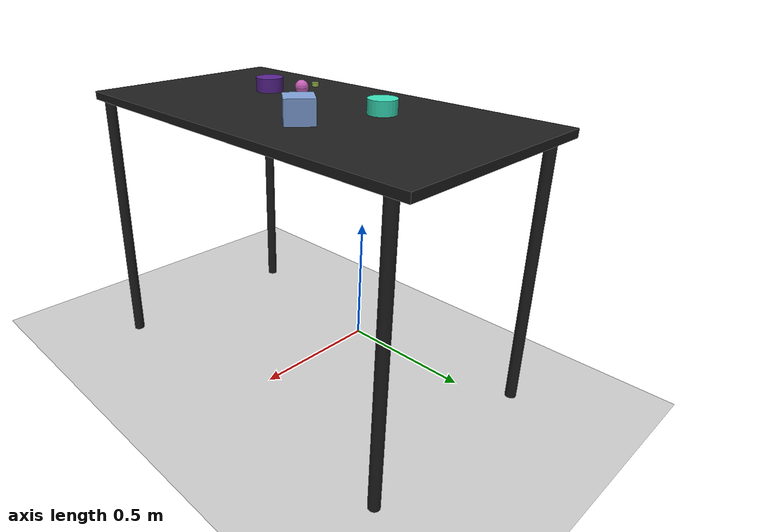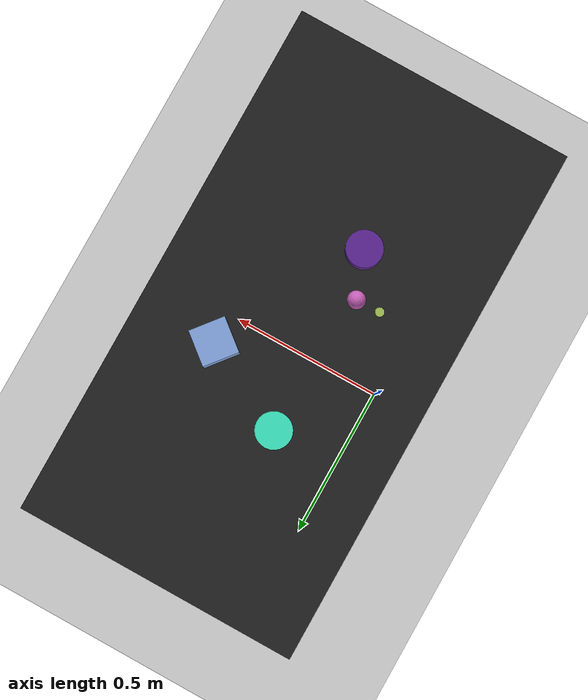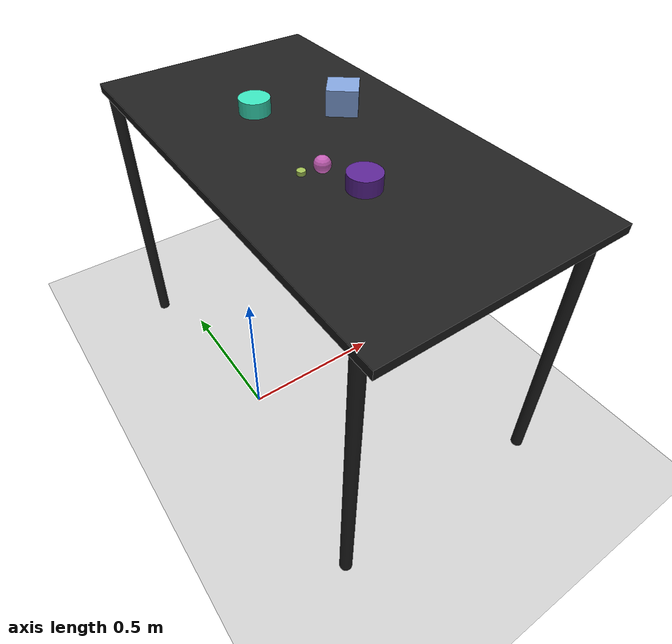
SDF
<?xml version="1.0" ?>
<sdf version="1.6">
  <world name="arm_world">
    <plugin filename="gz-sim-physics-system" name="gz::sim::systems::Physics">
      <engine>
        <filename>libgz-physics-bullet-featherstone-plugin.so</filename>
      </engine>
    </plugin>
    <plugin filename="gz-sim-user-commands-system" name="gz::sim::systems::UserCommands"/>
    <plugin filename="gz-sim-scene-broadcaster-system" name="gz::sim::systems::SceneBroadcaster"/>
    <plugin filename="gz-sim-sensors-system" name="gz::sim::systems::Sensors">
      <render_engine>ogre2</render_engine>
    </plugin>
    <gravity>0.0 0.0 -9.8</gravity>
    <scene>
      <shadows>false</shadows>
    </scene>
    <gui>
      <camera name="user_camera">
        <pose>0.75 -0.75 1.4 0 0.29 2.21</pose>
      </camera>
    </gui>
    <include>
      <uri>https://fuel.gazebosim.org/1.0/OpenRobotics/models/Sun</uri>
    </include>
    <model name="table">
      <static>true</static>
      <include>
        <uri>model://table</uri>
      </include>
      <pose>0.29 0 0 0 0 1.5708</pose>
    </model>
    <model name="ground_plane">
      <static>true</static>
      <link name="link">
        <collision name="collision">
          <geometry>
            <plane>
              <normal>0 0 1</normal>
            </plane>
          </geometry>
          <surface>
            <friction>
              <ode>
                <mu>1.0</mu>
                <mu2>1.0</mu2>
              </ode>
            </friction>
          </surface>
        </collision>
        <visual name="visual">
          <geometry>
            <plane>
              <normal>0 0 1</normal>
              <size>100 100</size>
            </plane>
          </geometry>
          <material>
            <ambient>0.8 0.8 0.8 1</ambient>
            <diffuse>0.8 0.8 0.8 1</diffuse>
            <specular>0.8 0.8 0.8 1</specular>
          </material>
        </visual>
      </link>
    </model>
    <model name="sphere_m_0">
      <pose>0.191 -0.146 1.05 0 0 2.88</pose>
      <link name="sphere_m_0_link">
        <inertial>
          <mass>0.05</mass>
          <inertia>
            <ixx>2.04e-7</ixx>
            <iyy>2.04e-7</iyy>
            <izz>3.9e-8</izz>
            <ixy>0</ixy>
            <ixz>0</ixz>
            <iyz>0</iyz>
          </inertia>
        </inertial>
        <collision name="sphere_m_0_collision">
          <geometry>
            <sphere>
              <radius>0.025</radius>
            </sphere>
          </geometry>
          <surface>
            <friction>
              <ode>
                <mu>0.8</mu>
                <mu2>0.8</mu2>
                <fdir1>0 0 1</fdir1>
                <slip1>0.001</slip1>
                <slip2>0.001</slip2>
              </ode>
              <torsional>
                <coefficient>0.1</coefficient>
                <surface_radius>0.015</surface_radius>
                <use_patch_radius>true</use_patch_radius>
              </torsional>
            </friction>
            <contact>
              <ode>
                <kp>1e5</kp>
                <kd>10</kd>
                <max_vel>0.1</max_vel>
                <min_depth>0.001</min_depth>
                <soft_cfm>0.01</soft_cfm>
                <soft_erp>0.2</soft_erp>
              </ode>
            </contact>
            <bounce>
              <restitution_coefficient>0.2</restitution_coefficient>
              <threshold>0.01</threshold>
            </bounce>
          </surface>
        </collision>
        <visual name="sphere_m_0_visual">
          <geometry>
            <sphere>
              <radius>0.025</radius>
            </sphere>
          </geometry>
          <material>
            <ambient>0.78 0.37 0.72 1</ambient>
            <diffuse>0.78 0.37 0.72 1</diffuse>
          </material>
        </visual>
        <velocity_decay>
          <linear>1</linear>
          <angular>1</angular>
        </velocity_decay>
      </link>
    </model>
    <model name="cube_l_1">
      <pose>0.458 0.13 1.05 0 0 0.89</pose>
      <link name="cube_l_1_link">
        <inertial>
          <mass>0.05</mass>
          <inertia>
            <ixx>2.04e-7</ixx>
            <iyy>2.04e-7</iyy>
            <izz>3.9e-8</izz>
            <ixy>0</ixy>
            <ixz>0</ixz>
            <iyz>0</iyz>
          </inertia>
        </inertial>
        <collision name="cube_l_1_collision">
          <geometry>
            <box>
              <size>0.1 0.1 0.1</size>
            </box>
          </geometry>
          <surface>
            <friction>
              <ode>
                <mu>0.8</mu>
                <mu2>0.8</mu2>
                <fdir1>0 0 1</fdir1>
                <slip1>0.001</slip1>
                <slip2>0.001</slip2>
              </ode>
              <torsional>
                <coefficient>0.1</coefficient>
                <surface_radius>0.015</surface_radius>
                <use_patch_radius>true</use_patch_radius>
              </torsional>
            </friction>
            <contact>
              <ode>
                <kp>1e5</kp>
                <kd>10</kd>
                <max_vel>0.1</max_vel>
                <min_depth>0.001</min_depth>
                <soft_cfm>0.01</soft_cfm>
                <soft_erp>0.2</soft_erp>
              </ode>
            </contact>
            <bounce>
              <restitution_coefficient>0.2</restitution_coefficient>
              <threshold>0.01</threshold>
            </bounce>
          </surface>
        </collision>
        <visual name="cube_l_1_visual">
          <geometry>
            <box>
              <size>0.1 0.1 0.1</size>
            </box>
          </geometry>
          <material>
            <ambient>0.5 0.63 0.85 1</ambient>
            <diffuse>0.5 0.63 0.85 1</diffuse>
          </material>
        </visual>
        <velocity_decay>
          <linear>1</linear>
          <angular>1</angular>
        </velocity_decay>
      </link>
    </model>
    <model name="cylinder_s_2">
      <pose>0.123 -0.147 1.05 0 0 0.46</pose>
      <link name="cylinder_s_2_link">
        <inertial>
          <mass>0.05</mass>
          <inertia>
            <ixx>2.04e-7</ixx>
            <iyy>2.04e-7</iyy>
            <izz>3.9e-8</izz>
            <ixy>0</ixy>
            <ixz>0</ixz>
            <iyz>0</iyz>
          </inertia>
        </inertial>
        <collision name="cylinder_s_2_collision">
          <geometry>
            <cylinder>
              <radius>0.0125</radius>
              <length>0.0125</length>
            </cylinder>
          </geometry>
          <surface>
            <friction>
              <ode>
                <mu>0.8</mu>
                <mu2>0.8</mu2>
                <fdir1>0 0 1</fdir1>
                <slip1>0.001</slip1>
                <slip2>0.001</slip2>
              </ode>
              <torsional>
                <coefficient>0.1</coefficient>
                <surface_radius>0.015</surface_radius>
                <use_patch_radius>true</use_patch_radius>
              </torsional>
            </friction>
            <contact>
              <ode>
                <kp>1e5</kp>
                <kd>10</kd>
                <max_vel>0.1</max_vel>
                <min_depth>0.001</min_depth>
                <soft_cfm>0.01</soft_cfm>
                <soft_erp>0.2</soft_erp>
              </ode>
            </contact>
            <bounce>
              <restitution_coefficient>0.2</restitution_coefficient>
              <threshold>0.01</threshold>
            </bounce>
          </surface>
        </collision>
        <visual name="cylinder_s_2_visual">
          <geometry>
            <cylinder>
              <radius>0.0125</radius>
              <length>0.0125</length>
            </cylinder>
          </geometry>
          <material>
            <ambient>0.62 0.74 0.32 1</ambient>
            <diffuse>0.62 0.74 0.32 1</diffuse>
          </material>
        </visual>
        <velocity_decay>
          <linear>1</linear>
          <angular>1</angular>
        </velocity_decay>
      </link>
    </model>
    <model name="cylinder_l_3">
      <pose>0.213 0.254 1.05 0 0 4.48</pose>
      <link name="cylinder_l_3_link">
        <inertial>
          <mass>0.05</mass>
          <inertia>
            <ixx>2.04e-7</ixx>
            <iyy>2.04e-7</iyy>
            <izz>3.9e-8</izz>
            <ixy>0</ixy>
            <ixz>0</ixz>
            <iyz>0</iyz>
          </inertia>
        </inertial>
        <collision name="cylinder_l_3_collision">
          <geometry>
            <cylinder>
              <radius>0.05</radius>
              <length>0.05</length>
            </cylinder>
          </geometry>
          <surface>
            <friction>
              <ode>
                <mu>0.8</mu>
                <mu2>0.8</mu2>
                <fdir1>0 0 1</fdir1>
                <slip1>0.001</slip1>
                <slip2>0.001</slip2>
              </ode>
              <torsional>
                <coefficient>0.1</coefficient>
                <surface_radius>0.015</surface_radius>
                <use_patch_radius>true</use_patch_radius>
              </torsional>
            </friction>
            <contact>
              <ode>
                <kp>1e5</kp>
                <kd>10</kd>
                <max_vel>0.1</max_vel>
                <min_depth>0.001</min_depth>
                <soft_cfm>0.01</soft_cfm>
                <soft_erp>0.2</soft_erp>
              </ode>
            </contact>
            <bounce>
              <restitution_coefficient>0.2</restitution_coefficient>
              <threshold>0.01</threshold>
            </bounce>
          </surface>
        </collision>
        <visual name="cylinder_l_3_visual">
          <geometry>
            <cylinder>
              <radius>0.05</radius>
              <length>0.05</length>
            </cylinder>
          </geometry>
          <material>
            <ambient>0.22 0.88 0.73 1</ambient>
            <diffuse>0.22 0.88 0.73 1</diffuse>
          </material>
        </visual>
        <velocity_decay>
          <linear>1</linear>
          <angular>1</angular>
        </velocity_decay>
      </link>
    </model>
    <model name="cylinder_l_4">
      <pose>0.237 -0.27 1.05 0 0 3.96</pose>
      <link name="cylinder_l_4_link">
        <inertial>
          <mass>0.05</mass>
          <inertia>
            <ixx>2.04e-7</ixx>
            <iyy>2.04e-7</iyy>
            <izz>3.9e-8</izz>
            <ixy>0</ixy>
            <ixz>0</ixz>
            <iyz>0</iyz>
          </inertia>
        </inertial>
        <collision name="cylinder_l_4_collision">
          <geometry>
            <cylinder>
              <radius>0.05</radius>
              <length>0.05</length>
            </cylinder>
          </geometry>
          <surface>
            <friction>
              <ode>
                <mu>0.8</mu>
                <mu2>0.8</mu2>
                <fdir1>0 0 1</fdir1>
                <slip1>0.001</slip1>
                <slip2>0.001</slip2>
              </ode>
              <torsional>
                <coefficient>0.1</coefficient>
                <surface_radius>0.015</surface_radius>
                <use_patch_radius>true</use_patch_radius>
              </torsional>
            </friction>
            <contact>
              <ode>
                <kp>1e5</kp>
                <kd>10</kd>
                <max_vel>0.1</max_vel>
                <min_depth>0.001</min_depth>
                <soft_cfm>0.01</soft_cfm>
                <soft_erp>0.2</soft_erp>
              </ode>
            </contact>
            <bounce>
              <restitution_coefficient>0.2</restitution_coefficient>
              <threshold>0.01</threshold>
            </bounce>
          </surface>
        </collision>
        <visual name="cylinder_l_4_visual">
          <geometry>
            <cylinder>
              <radius>0.05</radius>
              <length>0.05</length>
            </cylinder>
          </geometry>
          <material>
            <ambient>0.35 0.14 0.57 1</ambient>
            <diffuse>0.35 0.14 0.57 1</diffuse>
          </material>
        </visual>
        <velocity_decay>
          <linear>1</linear>
          <angular>1</angular>
        </velocity_decay>
      </link>
    </model>
  </world>
</sdf>

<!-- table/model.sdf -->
<sdf version="1.5">
  <model name="table">
    <static>true</static>
    <link name="link">
      <collision name="surface">
        <pose>0 0 1.0 0 0 0</pose>
        <geometry>
          <box>
            <size>1.5 0.8 0.03</size>
          </box>
        </geometry>
        <surface>
          <friction>
            <ode>
              <mu>0.6</mu>
              <mu2>0.6</mu2>
            </ode>
          </friction>
        </surface>
      </collision>
      <visual name="surface">
        <pose>0 0 1.0 0 0 0</pose>
        <geometry>
          <box>
            <size>1.5 0.8 0.03</size>
          </box>
        </geometry>
        <material>
          <script>
            <uri>file://media/materials/scripts/gazebo.material</uri>
            <name>Gazebo/Black</name>
          </script>
        </material>
      </visual>
      <collision name="front_left_leg">
        <pose>0.68 0.38 0.5 0 0 0</pose>
        <geometry>
          <cylinder>
            <radius>0.02</radius>
            <length>1.0</length>
          </cylinder>
        </geometry>
      </collision>
      <visual name="front_left_leg">
        <pose>0.68 0.38 0.5 0 0 0</pose>
        <geometry>
          <cylinder>
            <radius>0.02</radius>
            <length>1.0</length>
          </cylinder>
        </geometry>
        <material>
          <script>
            <uri>file://media/materials/scripts/gazebo.material</uri>
            <name>Gazebo/Black</name>
          </script>
        </material>
      </visual>
      <collision name="front_right_leg">
        <pose>0.68 -0.38 0.5 0 0 0</pose>
        <geometry>
          <cylinder>
            <radius>0.02</radius>
            <length>1.0</length>
          </cylinder>
        </geometry>
      </collision>
      <visual name="front_right_leg">
        <pose>0.68 -0.38 0.5 0 0 0</pose>
        <geometry>
          <cylinder>
            <radius>0.02</radius>
            <length>1.0</length>
          </cylinder>
        </geometry>
        <material>
          <script>
            <uri>file://media/materials/scripts/gazebo.material</uri>
            <name>Gazebo/Black</name>
          </script>
        </material>
      </visual>
      <collision name="back_right_leg">
        <pose>-0.68 -0.38 0.5 0 0 0</pose>
        <geometry>
          <cylinder>
            <radius>0.02</radius>
            <length>1.0</length>
          </cylinder>
        </geometry>
      </collision>
      <visual name="back_right_leg">
        <pose>-0.68 -0.38 0.5 0 0 0</pose>
        <geometry>
          <cylinder>
            <radius>0.02</radius>
            <length>1.0</length>
          </cylinder>
        </geometry>
        <material>
          <script>
            <uri>file://media/materials/scripts/gazebo.material</uri>
            <name>Gazebo/Black</name>
          </script>
        </material>
      </visual>
      <collision name="back_left_leg">
        <pose>-0.68 0.38 0.5 0 0 0</pose>
        <geometry>
          <cylinder>
            <radius>0.02</radius>
            <length>1.0</length>
          </cylinder>
        </geometry>
      </collision>
      <visual name="back_left_leg">
        <pose>-0.68 0.38 0.5 0 0 0</pose>
        <geometry>
          <cylinder>
            <radius>0.02</radius>
            <length>1.0</length>
          </cylinder>
        </geometry>
        <material>
          <script>
            <uri>file://media/materials/scripts/gazebo.material</uri>
            <name>Gazebo/Black</name>
          </script>
        </material>
      </visual>
    </link>
  </model>
</sdf>
